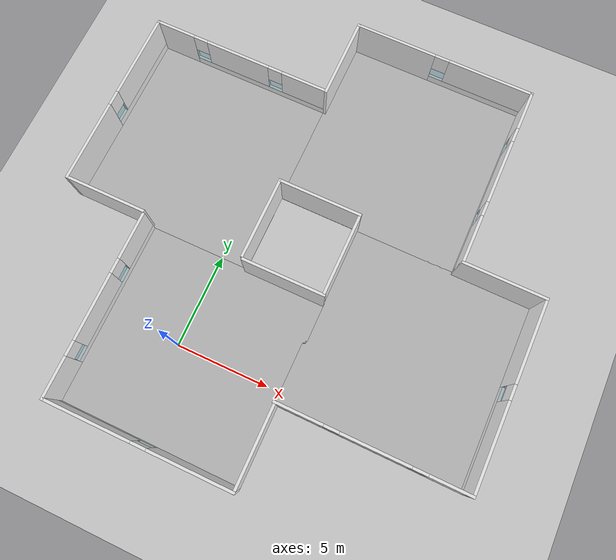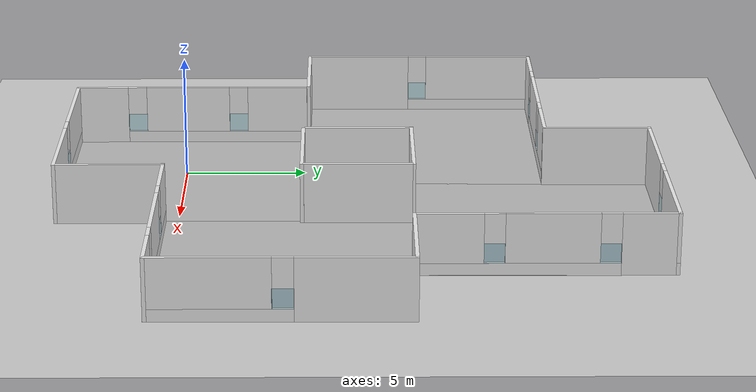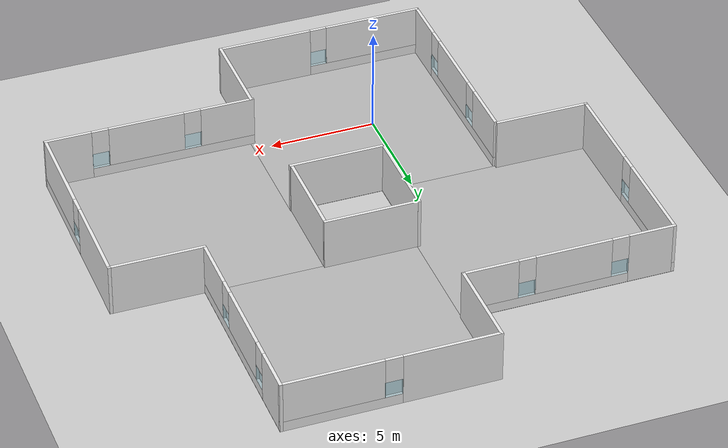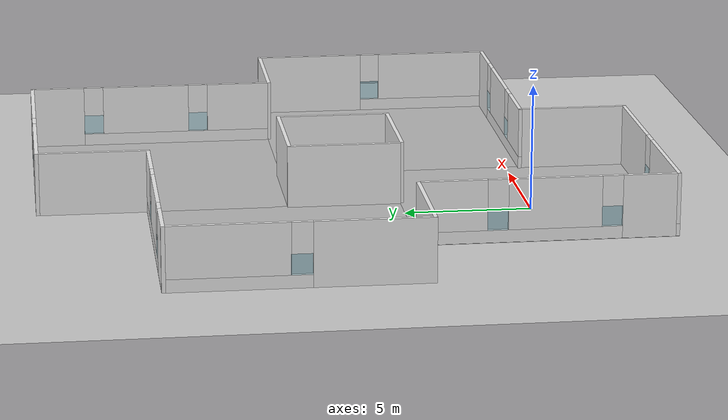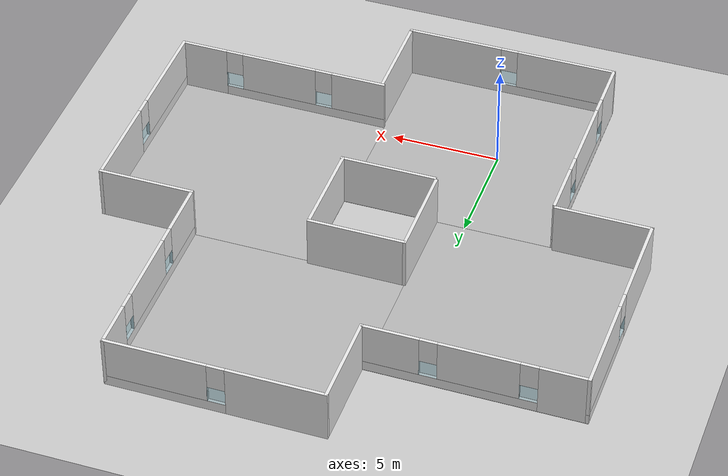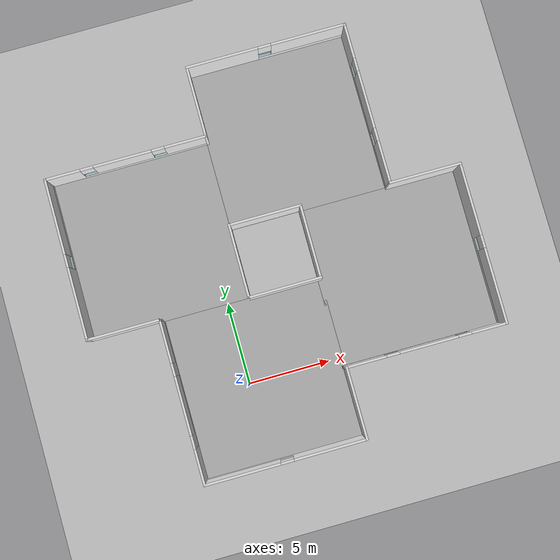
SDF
<sdf version="1.6">
 <world name="default">
  <model name="ground_plane">
   <static>1</static>
   <link name="link">
    <collision name="collision">
     <geometry><plane><normal>0 0 1</normal><size>100 100</size></plane></geometry>
     <surface>
      <contact><collide_bitmask>65535</collide_bitmask></contact>
      <friction><ode><mu>100</mu><mu2>50</mu2></ode></friction>
     </surface>
    </collision>
    <visual name="visual">
     <cast_shadows>0</cast_shadows>
     <geometry><plane><normal>0 0 1</normal><size>100 100</size></plane></geometry>
     <material>
      <script><uri>file://media/materials/scripts/gazebo.material</uri><name>Gazebo/Grey</name></script>
     </material>
    </visual>
   </link>
  </model>
  <light name="sun" type="directional">
   <cast_shadows>0</cast_shadows>
   <pose>0 0 70 0 -0 0</pose>
   <diffuse>0.1 0.2 0.3 1</diffuse>
   <specular>0.2 0.2 0.2 1</specular>
   <attenuation>
    <range>10</range>
    <constant>0.9</constant>
    <linear>0.01</linear>
    <quadratic>0.001</quadratic>
   </attenuation>
   <direction>-0.5 0.1 -0.9</direction>
  </light>
  <scene><ambient>0.75 0.75 0.75 0</ambient><shadows>1</shadows><background>0.7 0.7 0.7 1</background></scene>
  <gravity>0 0 -9.8</gravity>
  <magnetic_field>6e-06 2.3e-05 -4.2e-05</magnetic_field>
  <atmosphere type="adiabatic"/>
  <physics name="default_physics" default="0" type="ode">
   <max_step_size>0.001</max_step_size>
   <real_time_factor>1</real_time_factor>
   <real_time_update_rate>1000</real_time_update_rate>
  </physics>
  <audio><device>default</device></audio>
  <spherical_coordinates>
   <surface_model>EARTH_WGS84</surface_model>
   <latitude_deg>0</latitude_deg>
   <longitude_deg>0</longitude_deg>
   <elevation>0</elevation>
   <heading_deg>0</heading_deg>
  </spherical_coordinates>
  <model name="office_small">
   <model name="office_small">
    <pose>0.796663 0.043102 0 0 -0 0</pose>
    <link name="Wall_2">
     <pose>0 4.925 0 0 -0 0</pose>
     <visual name="Wall_2_Visual_1">
      <pose>2.75976 0 1.25 0 -0 0</pose>
      <geometry><box><size>4.48049 0.15 2.5</size></box></geometry>
      <material>
       <script>
        <uri>model://office_small/materials/scripts</uri>
        <uri>model://office_small/materials/textures</uri>
        <name>wall_white</name>
       </script>
      </material>
     </visual>
     <collision name="Wall_2_Collision_1">
      <geometry><box><size>4.48049 0.15 2.5</size></box></geometry>
      <pose>2.75976 0 1.25 0 -0 0</pose>
     </collision>
    </link>
    <link name="Wall_3">
     <pose>4.925 0 0 0 0 -1.5708</pose>
     <visual name="Wall_2_Visual_1">
      <pose>2.75976 0 1.25 0 -0 0</pose>
      <geometry><box><size>4.48049 0.15 2.5</size></box></geometry>
      <material>
       <script>
        <uri>model://office_small/materials/scripts</uri>
        <uri>model://office_small/materials/textures</uri>
        <name>wall_white</name>
       </script>
      </material>
     </visual>
     <collision name="Wall_2_Collision_1">
      <geometry><box><size>4.48049 0.15 2.5</size></box></geometry>
      <pose>2.75976 0 1.25 0 -0 0</pose>
     </collision>
    </link>
    <link name="Wall_4">
     <pose>0 -4.925 0 0 -0 3.14159</pose>
     <visual name="Wall_4_Visual_0">
      <pose>-2.74632 0 1.25 0 -0 0</pose>
      <geometry><box><size>4.50736 0.15 2.5</size></box></geometry>
      <material>
       <script>
        <uri>model://office_small/materials/scripts</uri>
        <uri>model://office_small/materials/textures</uri>
        <name>wall_white</name>
       </script>
      </material>
     </visual>
     <collision name="Wall_4_Collision_0">
      <geometry><box><size>4.50736 0.15 2.5</size></box></geometry>
      <pose>-2.74632 0 1.25 0 -0 0</pose>
     </collision>
     <visual name="Wall_4_Visual_1">
      <pose>2.25368 0 0.25 0 -0 0</pose>
      <geometry><box><size>5.49264 0.15 0.5</size></box></geometry>
      <material>
       <script>
        <uri>model://office_small/materials/scripts</uri>
        <uri>model://office_small/materials/textures</uri>
        <name>wall_white</name>
       </script>
      </material>
     </visual>
     <collision name="Wall_4_Collision_1">
      <geometry><box><size>5.49264 0.15 0.5</size></box></geometry>
      <pose>2.25368 0 0.25 0 -0 0</pose>
     </collision>
     <visual name="Wall_4_Visual_2">
      <pose>2.65368 0 1.5 0 -0 0</pose>
      <geometry><box><size>4.69264 0.15 2</size></box></geometry>
      <material>
       <script>
        <uri>model://office_small/materials/scripts</uri>
        <uri>model://office_small/materials/textures</uri>
        <name>wall_white</name>
       </script>
      </material>
     </visual>
     <collision name="Wall_4_Collision_2">
      <geometry><box><size>4.69264 0.15 2</size></box></geometry>
      <pose>2.65368 0 1.5 0 -0 0</pose>
     </collision>
     <visual name="Wall_4_Visual_3">
      <pose>-0.09264 0 1.9 0 -0 0</pose>
      <geometry><box><size>0.8 0.15 1.2</size></box></geometry>
      <material>
       <script>
        <uri>model://office_small/materials/scripts</uri>
        <uri>model://office_small/materials/textures</uri>
        <name>wall_white</name>
       </script>
      </material>
     </visual>
     <collision name="Wall_4_Collision_3">
      <geometry><box><size>0.8 0.15 1.2</size></box></geometry>
      <pose>-0.09264 0 1.9 0 -0 0</pose>
     </collision>
    </link>
    <link name="Wall_5">
     <pose>-4.925 0 0 0 -0 1.5708</pose>
     <visual name="Wall_5_Visual_0">
      <pose>-3.88364 0 1.25 0 -0 0</pose>
      <geometry><box><size>2.23271 0.15 2.5</size></box></geometry>
      <material>
       <script>
        <uri>model://office_small/materials/scripts</uri>
        <uri>model://office_small/materials/textures</uri>
        <name>wall_white</name>
       </script>
      </material>
     </visual>
     <collision name="Wall_5_Collision_0">
      <geometry><box><size>2.23271 0.15 2.5</size></box></geometry>
      <pose>-3.88364 0 1.25 0 -0 0</pose>
     </collision>
     <visual name="Wall_5_Visual_1">
      <pose>1.11636 0 0.25 0 -0 0</pose>
      <geometry><box><size>7.76729 0.15 0.5</size></box></geometry>
      <material>
       <script>
        <uri>model://office_small/materials/scripts</uri>
        <uri>model://office_small/materials/textures</uri>
        <name>wall_white</name>
       </script>
      </material>
     </visual>
     <collision name="Wall_5_Collision_1">
      <geometry><box><size>7.76729 0.15 0.5</size></box></geometry>
      <pose>1.11636 0 0.25 0 -0 0</pose>
     </collision>
     <visual name="Wall_5_Visual_2">
      <pose>-0.169878 0 1.5 0 -0 0</pose>
      <geometry><box><size>3.59482 0.15 2</size></box></geometry>
      <material>
       <script>
        <uri>model://office_small/materials/scripts</uri>
        <uri>model://office_small/materials/textures</uri>
        <name>wall_white</name>
       </script>
      </material>
     </visual>
     <collision name="Wall_5_Collision_2">
      <geometry><box><size>3.59482 0.15 2</size></box></geometry>
      <pose>-0.169878 0 1.5 0 -0 0</pose>
     </collision>
     <visual name="Wall_5_Visual_3">
      <pose>3.71376 0 1.5 0 -0 0</pose>
      <geometry><box><size>2.57247 0.15 2</size></box></geometry>
      <material>
       <script>
        <uri>model://office_small/materials/scripts</uri>
        <uri>model://office_small/materials/textures</uri>
        <name>wall_white</name>
       </script>
      </material>
     </visual>
     <collision name="Wall_5_Collision_3">
      <geometry><box><size>2.57247 0.15 2</size></box></geometry>
      <pose>3.71376 0 1.5 0 -0 0</pose>
     </collision>
     <visual name="Wall_5_Visual_4">
      <pose>-2.36729 0 1.9 0 -0 0</pose>
      <geometry><box><size>0.8 0.15 1.2</size></box></geometry>
      <material>
       <script>
        <uri>model://office_small/materials/scripts</uri>
        <uri>model://office_small/materials/textures</uri>
        <name>wall_white</name>
       </script>
      </material>
     </visual>
     <collision name="Wall_5_Collision_4">
      <geometry><box><size>0.8 0.15 1.2</size></box></geometry>
      <pose>-2.36729 0 1.9 0 -0 0</pose>
     </collision>
     <visual name="Wall_5_Visual_5">
      <pose>2.02753 0 1.9 0 -0 0</pose>
      <geometry><box><size>0.8 0.15 1.2</size></box></geometry>
      <material>
       <script>
        <uri>model://office_small/materials/scripts</uri>
        <uri>model://office_small/materials/textures</uri>
        <name>wall_white</name>
       </script>
      </material>
     </visual>
     <collision name="Wall_5_Collision_5">
      <geometry><box><size>0.8 0.15 1.2</size></box></geometry>
      <pose>2.02753 0 1.9 0 -0 0</pose>
     </collision>
    </link>
    <static>1</static>
   </model>
   <model name="window">
    <link name="link_2">
     <visual name="visual">
      <pose>0 0 0.9 0 -0 0</pose>
      <geometry><box><size>0.8 0.15 0.8</size></box></geometry>
      <material>
       <lighting>1</lighting>
       <ambient>0.1 0.5 0.6 1</ambient>
       <diffuse>0.1 0.5 0.6 1</diffuse>
       <specular>0.01 0.01 0.01 1</specular>
       <emissive>0 0 0 1</emissive>
      </material>
      <transparency>0.7</transparency>
     </visual>
     <collision name="collision">
      <pose>0 0 0.9 0 -0 0</pose>
      <geometry><box><size>0.8 0.15 0.8</size></box></geometry>
     </collision>
    </link>
    <static>1</static>
    <pose>-4.12651 2.07152 0 0 -0 1.5706</pose>
   </model>
   <model name="window_0">
    <link name="link_2">
     <visual name="visual">
      <pose>0 0 0.9 0 -0 0</pose>
      <geometry><box><size>0.8 0.15 0.8</size></box></geometry>
      <material>
       <lighting>1</lighting>
       <ambient>0.1 0.5 0.6 1</ambient>
       <diffuse>0.1 0.5 0.6 1</diffuse>
       <specular>0.01 0.01 0.01 1</specular>
       <emissive>0 0 0 1</emissive>
      </material>
      <transparency>0.7</transparency>
     </visual>
     <collision name="collision">
      <pose>0 0 0.9 0 -0 0</pose>
      <geometry><box><size>0.8 0.15 0.8</size></box></geometry>
     </collision>
    </link>
    <static>1</static>
    <pose>-4.12726 -2.32854 0 0 -0 1.57</pose>
   </model>
   <model name="window_1">
    <link name="link_2">
     <visual name="visual">
      <pose>0 0 0.9 0 -0 0</pose>
      <geometry><box><size>0.8 0.15 0.8</size></box></geometry>
      <material>
       <lighting>1</lighting>
       <ambient>0.1 0.5 0.6 1</ambient>
       <diffuse>0.1 0.5 0.6 1</diffuse>
       <specular>0.01 0.01 0.01 1</specular>
       <emissive>0 0 0 1</emissive>
      </material>
      <transparency>0.7</transparency>
     </visual>
     <collision name="collision">
      <pose>0 0 0.9 0 -0 0</pose>
      <geometry><box><size>0.8 0.15 0.8</size></box></geometry>
     </collision>
    </link>
    <static>1</static>
    <pose>0.875059 -4.88342 0 0 -0 0</pose>
   </model>
   <model name="Floor">
    <link name="main">
     <pose>0.795 0.05 0.01 0 -0 0</pose>
     <collision name="main_Collision"><geometry><box><size>10 10 0.01</size></box></geometry></collision>
     <visual name="main_Visual">
      <geometry><box><size>10 10 0.01</size></box></geometry>
      <material>
       <script>
        <uri>model://office_small/materials/scripts</uri>
        <uri>model://office_small/materials/textures</uri>
        <name>floor</name>
       </script>
      </material>
     </visual>
    </link>
    <static>1</static>
   </model>
   <static>0</static>
   <pose>0.065724 -0.026802 0 0 -0 0</pose>
  </model>
  <model name="office_small_0">
   <model name="office_small">
    <pose>0.796663 0.043102 0 0 -0 0</pose>
    <link name="Wall_2">
     <pose>0 4.925 0 0 -0 0</pose>
     <visual name="Wall_2_Visual_1">
      <pose>2.75976 0 1.25 0 -0 0</pose>
      <geometry><box><size>4.48049 0.15 2.5</size></box></geometry>
      <material>
       <script>
        <uri>model://office_small/materials/scripts</uri>
        <uri>model://office_small/materials/textures</uri>
        <name>wall_white</name>
       </script>
      </material>
     </visual>
     <collision name="Wall_2_Collision_1">
      <geometry><box><size>4.48049 0.15 2.5</size></box></geometry>
      <pose>2.75976 0 1.25 0 -0 0</pose>
     </collision>
    </link>
    <link name="Wall_3">
     <pose>4.925 0 0 0 0 -1.5708</pose>
     <visual name="Wall_2_Visual_1">
      <pose>2.75976 0 1.25 0 -0 0</pose>
      <geometry><box><size>4.48049 0.15 2.5</size></box></geometry>
      <material>
       <script>
        <uri>model://office_small/materials/scripts</uri>
        <uri>model://office_small/materials/textures</uri>
        <name>wall_white</name>
       </script>
      </material>
     </visual>
     <collision name="Wall_2_Collision_1">
      <geometry><box><size>4.48049 0.15 2.5</size></box></geometry>
      <pose>2.75976 0 1.25 0 -0 0</pose>
     </collision>
    </link>
    <link name="Wall_4">
     <pose>0 -4.925 0 0 -0 3.14159</pose>
     <visual name="Wall_4_Visual_0">
      <pose>-2.74632 0 1.25 0 -0 0</pose>
      <geometry><box><size>4.50736 0.15 2.5</size></box></geometry>
      <material>
       <script>
        <uri>model://office_small/materials/scripts</uri>
        <uri>model://office_small/materials/textures</uri>
        <name>wall_white</name>
       </script>
      </material>
     </visual>
     <collision name="Wall_4_Collision_0">
      <geometry><box><size>4.50736 0.15 2.5</size></box></geometry>
      <pose>-2.74632 0 1.25 0 -0 0</pose>
     </collision>
     <visual name="Wall_4_Visual_1">
      <pose>2.25368 0 0.25 0 -0 0</pose>
      <geometry><box><size>5.49264 0.15 0.5</size></box></geometry>
      <material>
       <script>
        <uri>model://office_small/materials/scripts</uri>
        <uri>model://office_small/materials/textures</uri>
        <name>wall_white</name>
       </script>
      </material>
     </visual>
     <collision name="Wall_4_Collision_1">
      <geometry><box><size>5.49264 0.15 0.5</size></box></geometry>
      <pose>2.25368 0 0.25 0 -0 0</pose>
     </collision>
     <visual name="Wall_4_Visual_2">
      <pose>2.65368 0 1.5 0 -0 0</pose>
      <geometry><box><size>4.69264 0.15 2</size></box></geometry>
      <material>
       <script>
        <uri>model://office_small/materials/scripts</uri>
        <uri>model://office_small/materials/textures</uri>
        <name>wall_white</name>
       </script>
      </material>
     </visual>
     <collision name="Wall_4_Collision_2">
      <geometry><box><size>4.69264 0.15 2</size></box></geometry>
      <pose>2.65368 0 1.5 0 -0 0</pose>
     </collision>
     <visual name="Wall_4_Visual_3">
      <pose>-0.09264 0 1.9 0 -0 0</pose>
      <geometry><box><size>0.8 0.15 1.2</size></box></geometry>
      <material>
       <script>
        <uri>model://office_small/materials/scripts</uri>
        <uri>model://office_small/materials/textures</uri>
        <name>wall_white</name>
       </script>
      </material>
     </visual>
     <collision name="Wall_4_Collision_3">
      <geometry><box><size>0.8 0.15 1.2</size></box></geometry>
      <pose>-0.09264 0 1.9 0 -0 0</pose>
     </collision>
    </link>
    <link name="Wall_5">
     <pose>-4.925 0 0 0 -0 1.5708</pose>
     <visual name="Wall_5_Visual_0">
      <pose>-3.88364 0 1.25 0 -0 0</pose>
      <geometry><box><size>2.23271 0.15 2.5</size></box></geometry>
      <material>
       <script>
        <uri>model://office_small/materials/scripts</uri>
        <uri>model://office_small/materials/textures</uri>
        <name>wall_white</name>
       </script>
      </material>
     </visual>
     <collision name="Wall_5_Collision_0">
      <geometry><box><size>2.23271 0.15 2.5</size></box></geometry>
      <pose>-3.88364 0 1.25 0 -0 0</pose>
     </collision>
     <visual name="Wall_5_Visual_1">
      <pose>1.11636 0 0.25 0 -0 0</pose>
      <geometry><box><size>7.76729 0.15 0.5</size></box></geometry>
      <material>
       <script>
        <uri>model://office_small/materials/scripts</uri>
        <uri>model://office_small/materials/textures</uri>
        <name>wall_white</name>
       </script>
      </material>
     </visual>
     <collision name="Wall_5_Collision_1">
      <geometry><box><size>7.76729 0.15 0.5</size></box></geometry>
      <pose>1.11636 0 0.25 0 -0 0</pose>
     </collision>
     <visual name="Wall_5_Visual_2">
      <pose>-0.169878 0 1.5 0 -0 0</pose>
      <geometry><box><size>3.59482 0.15 2</size></box></geometry>
      <material>
       <script>
        <uri>model://office_small/materials/scripts</uri>
        <uri>model://office_small/materials/textures</uri>
        <name>wall_white</name>
       </script>
      </material>
     </visual>
     <collision name="Wall_5_Collision_2">
      <geometry><box><size>3.59482 0.15 2</size></box></geometry>
      <pose>-0.169878 0 1.5 0 -0 0</pose>
     </collision>
     <visual name="Wall_5_Visual_3">
      <pose>3.71376 0 1.5 0 -0 0</pose>
      <geometry><box><size>2.57247 0.15 2</size></box></geometry>
      <material>
       <script>
        <uri>model://office_small/materials/scripts</uri>
        <uri>model://office_small/materials/textures</uri>
        <name>wall_white</name>
       </script>
      </material>
     </visual>
     <collision name="Wall_5_Collision_3">
      <geometry><box><size>2.57247 0.15 2</size></box></geometry>
      <pose>3.71376 0 1.5 0 -0 0</pose>
     </collision>
     <visual name="Wall_5_Visual_4">
      <pose>-2.36729 0 1.9 0 -0 0</pose>
      <geometry><box><size>0.8 0.15 1.2</size></box></geometry>
      <material>
       <script>
        <uri>model://office_small/materials/scripts</uri>
        <uri>model://office_small/materials/textures</uri>
        <name>wall_white</name>
       </script>
      </material>
     </visual>
     <collision name="Wall_5_Collision_4">
      <geometry><box><size>0.8 0.15 1.2</size></box></geometry>
      <pose>-2.36729 0 1.9 0 -0 0</pose>
     </collision>
     <visual name="Wall_5_Visual_5">
      <pose>2.02753 0 1.9 0 -0 0</pose>
      <geometry><box><size>0.8 0.15 1.2</size></box></geometry>
      <material>
       <script>
        <uri>model://office_small/materials/scripts</uri>
        <uri>model://office_small/materials/textures</uri>
        <name>wall_white</name>
       </script>
      </material>
     </visual>
     <collision name="Wall_5_Collision_5">
      <geometry><box><size>0.8 0.15 1.2</size></box></geometry>
      <pose>2.02753 0 1.9 0 -0 0</pose>
     </collision>
    </link>
    <static>1</static>
   </model>
   <model name="window">
    <link name="link_2">
     <visual name="visual">
      <pose>0 0 0.9 0 -0 0</pose>
      <geometry><box><size>0.8 0.15 0.8</size></box></geometry>
      <material>
       <lighting>1</lighting>
       <ambient>0.1 0.5 0.6 1</ambient>
       <diffuse>0.1 0.5 0.6 1</diffuse>
       <specular>0.01 0.01 0.01 1</specular>
       <emissive>0 0 0 1</emissive>
      </material>
      <transparency>0.7</transparency>
     </visual>
     <collision name="collision">
      <pose>0 0 0.9 0 -0 0</pose>
      <geometry><box><size>0.8 0.15 0.8</size></box></geometry>
     </collision>
    </link>
    <static>1</static>
    <pose>-4.12651 2.07152 0 0 -0 1.5706</pose>
   </model>
   <model name="window_0">
    <link name="link_2">
     <visual name="visual">
      <pose>0 0 0.9 0 -0 0</pose>
      <geometry><box><size>0.8 0.15 0.8</size></box></geometry>
      <material>
       <lighting>1</lighting>
       <ambient>0.1 0.5 0.6 1</ambient>
       <diffuse>0.1 0.5 0.6 1</diffuse>
       <specular>0.01 0.01 0.01 1</specular>
       <emissive>0 0 0 1</emissive>
      </material>
      <transparency>0.7</transparency>
     </visual>
     <collision name="collision">
      <pose>0 0 0.9 0 -0 0</pose>
      <geometry><box><size>0.8 0.15 0.8</size></box></geometry>
     </collision>
    </link>
    <static>1</static>
    <pose>-4.12726 -2.32854 0 0 -0 1.57</pose>
   </model>
   <model name="window_1">
    <link name="link_2">
     <visual name="visual">
      <pose>0 0 0.9 0 -0 0</pose>
      <geometry><box><size>0.8 0.15 0.8</size></box></geometry>
      <material>
       <lighting>1</lighting>
       <ambient>0.1 0.5 0.6 1</ambient>
       <diffuse>0.1 0.5 0.6 1</diffuse>
       <specular>0.01 0.01 0.01 1</specular>
       <emissive>0 0 0 1</emissive>
      </material>
      <transparency>0.7</transparency>
     </visual>
     <collision name="collision">
      <pose>0 0 0.9 0 -0 0</pose>
      <geometry><box><size>0.8 0.15 0.8</size></box></geometry>
     </collision>
    </link>
    <static>1</static>
    <pose>0.875059 -4.88342 0 0 -0 0</pose>
   </model>
   <model name="Floor">
    <link name="main">
     <pose>0.795 0.05 0.01 0 -0 0</pose>
     <collision name="main_Collision"><geometry><box><size>10 10 0.01</size></box></geometry></collision>
     <visual name="main_Visual">
      <geometry><box><size>10 10 0.01</size></box></geometry>
      <material>
       <script>
        <uri>model://office_small/materials/scripts</uri>
        <uri>model://office_small/materials/textures</uri>
        <name>floor</name>
       </script>
      </material>
     </visual>
    </link>
    <static>1</static>
   </model>
   <static>0</static>
   <pose>10.7222 3.5342 0 0 -0 1.56617</pose>
  </model>
  <model name="office_small_1">
   <model name="office_small">
    <pose>0.796663 0.043102 0 0 -0 0</pose>
    <link name="Wall_2">
     <pose>0 4.925 0 0 -0 0</pose>
     <visual name="Wall_2_Visual_1">
      <pose>2.75976 0 1.25 0 -0 0</pose>
      <geometry><box><size>4.48049 0.15 2.5</size></box></geometry>
      <material>
       <script>
        <uri>model://office_small/materials/scripts</uri>
        <uri>model://office_small/materials/textures</uri>
        <name>wall_white</name>
       </script>
      </material>
     </visual>
     <collision name="Wall_2_Collision_1">
      <geometry><box><size>4.48049 0.15 2.5</size></box></geometry>
      <pose>2.75976 0 1.25 0 -0 0</pose>
     </collision>
    </link>
    <link name="Wall_3">
     <pose>4.925 0 0 0 0 -1.5708</pose>
     <visual name="Wall_2_Visual_1">
      <pose>2.75976 0 1.25 0 -0 0</pose>
      <geometry><box><size>4.48049 0.15 2.5</size></box></geometry>
      <material>
       <script>
        <uri>model://office_small/materials/scripts</uri>
        <uri>model://office_small/materials/textures</uri>
        <name>wall_white</name>
       </script>
      </material>
     </visual>
     <collision name="Wall_2_Collision_1">
      <geometry><box><size>4.48049 0.15 2.5</size></box></geometry>
      <pose>2.75976 0 1.25 0 -0 0</pose>
     </collision>
    </link>
    <link name="Wall_4">
     <pose>0 -4.925 0 0 -0 3.14159</pose>
     <visual name="Wall_4_Visual_0">
      <pose>-2.74632 0 1.25 0 -0 0</pose>
      <geometry><box><size>4.50736 0.15 2.5</size></box></geometry>
      <material>
       <script>
        <uri>model://office_small/materials/scripts</uri>
        <uri>model://office_small/materials/textures</uri>
        <name>wall_white</name>
       </script>
      </material>
     </visual>
     <collision name="Wall_4_Collision_0">
      <geometry><box><size>4.50736 0.15 2.5</size></box></geometry>
      <pose>-2.74632 0 1.25 0 -0 0</pose>
     </collision>
     <visual name="Wall_4_Visual_1">
      <pose>2.25368 0 0.25 0 -0 0</pose>
      <geometry><box><size>5.49264 0.15 0.5</size></box></geometry>
      <material>
       <script>
        <uri>model://office_small/materials/scripts</uri>
        <uri>model://office_small/materials/textures</uri>
        <name>wall_white</name>
       </script>
      </material>
     </visual>
     <collision name="Wall_4_Collision_1">
      <geometry><box><size>5.49264 0.15 0.5</size></box></geometry>
      <pose>2.25368 0 0.25 0 -0 0</pose>
     </collision>
     <visual name="Wall_4_Visual_2">
      <pose>2.65368 0 1.5 0 -0 0</pose>
      <geometry><box><size>4.69264 0.15 2</size></box></geometry>
      <material>
       <script>
        <uri>model://office_small/materials/scripts</uri>
        <uri>model://office_small/materials/textures</uri>
        <name>wall_white</name>
       </script>
      </material>
     </visual>
     <collision name="Wall_4_Collision_2">
      <geometry><box><size>4.69264 0.15 2</size></box></geometry>
      <pose>2.65368 0 1.5 0 -0 0</pose>
     </collision>
     <visual name="Wall_4_Visual_3">
      <pose>-0.09264 0 1.9 0 -0 0</pose>
      <geometry><box><size>0.8 0.15 1.2</size></box></geometry>
      <material>
       <script>
        <uri>model://office_small/materials/scripts</uri>
        <uri>model://office_small/materials/textures</uri>
        <name>wall_white</name>
       </script>
      </material>
     </visual>
     <collision name="Wall_4_Collision_3">
      <geometry><box><size>0.8 0.15 1.2</size></box></geometry>
      <pose>-0.09264 0 1.9 0 -0 0</pose>
     </collision>
    </link>
    <link name="Wall_5">
     <pose>-4.925 0 0 0 -0 1.5708</pose>
     <visual name="Wall_5_Visual_0">
      <pose>-3.88364 0 1.25 0 -0 0</pose>
      <geometry><box><size>2.23271 0.15 2.5</size></box></geometry>
      <material>
       <script>
        <uri>model://office_small/materials/scripts</uri>
        <uri>model://office_small/materials/textures</uri>
        <name>wall_white</name>
       </script>
      </material>
     </visual>
     <collision name="Wall_5_Collision_0">
      <geometry><box><size>2.23271 0.15 2.5</size></box></geometry>
      <pose>-3.88364 0 1.25 0 -0 0</pose>
     </collision>
     <visual name="Wall_5_Visual_1">
      <pose>1.11636 0 0.25 0 -0 0</pose>
      <geometry><box><size>7.76729 0.15 0.5</size></box></geometry>
      <material>
       <script>
        <uri>model://office_small/materials/scripts</uri>
        <uri>model://office_small/materials/textures</uri>
        <name>wall_white</name>
       </script>
      </material>
     </visual>
     <collision name="Wall_5_Collision_1">
      <geometry><box><size>7.76729 0.15 0.5</size></box></geometry>
      <pose>1.11636 0 0.25 0 -0 0</pose>
     </collision>
     <visual name="Wall_5_Visual_2">
      <pose>-0.169878 0 1.5 0 -0 0</pose>
      <geometry><box><size>3.59482 0.15 2</size></box></geometry>
      <material>
       <script>
        <uri>model://office_small/materials/scripts</uri>
        <uri>model://office_small/materials/textures</uri>
        <name>wall_white</name>
       </script>
      </material>
     </visual>
     <collision name="Wall_5_Collision_2">
      <geometry><box><size>3.59482 0.15 2</size></box></geometry>
      <pose>-0.169878 0 1.5 0 -0 0</pose>
     </collision>
     <visual name="Wall_5_Visual_3">
      <pose>3.71376 0 1.5 0 -0 0</pose>
      <geometry><box><size>2.57247 0.15 2</size></box></geometry>
      <material>
       <script>
        <uri>model://office_small/materials/scripts</uri>
        <uri>model://office_small/materials/textures</uri>
        <name>wall_white</name>
       </script>
      </material>
     </visual>
     <collision name="Wall_5_Collision_3">
      <geometry><box><size>2.57247 0.15 2</size></box></geometry>
      <pose>3.71376 0 1.5 0 -0 0</pose>
     </collision>
     <visual name="Wall_5_Visual_4">
      <pose>-2.36729 0 1.9 0 -0 0</pose>
      <geometry><box><size>0.8 0.15 1.2</size></box></geometry>
      <material>
       <script>
        <uri>model://office_small/materials/scripts</uri>
        <uri>model://office_small/materials/textures</uri>
        <name>wall_white</name>
       </script>
      </material>
     </visual>
     <collision name="Wall_5_Collision_4">
      <geometry><box><size>0.8 0.15 1.2</size></box></geometry>
      <pose>-2.36729 0 1.9 0 -0 0</pose>
     </collision>
     <visual name="Wall_5_Visual_5">
      <pose>2.02753 0 1.9 0 -0 0</pose>
      <geometry><box><size>0.8 0.15 1.2</size></box></geometry>
      <material>
       <script>
        <uri>model://office_small/materials/scripts</uri>
        <uri>model://office_small/materials/textures</uri>
        <name>wall_white</name>
       </script>
      </material>
     </visual>
     <collision name="Wall_5_Collision_5">
      <geometry><box><size>0.8 0.15 1.2</size></box></geometry>
      <pose>2.02753 0 1.9 0 -0 0</pose>
     </collision>
    </link>
    <static>1</static>
   </model>
   <model name="window">
    <link name="link_2">
     <visual name="visual">
      <pose>0 0 0.9 0 -0 0</pose>
      <geometry><box><size>0.8 0.15 0.8</size></box></geometry>
      <material>
       <lighting>1</lighting>
       <ambient>0.1 0.5 0.6 1</ambient>
       <diffuse>0.1 0.5 0.6 1</diffuse>
       <specular>0.01 0.01 0.01 1</specular>
       <emissive>0 0 0 1</emissive>
      </material>
      <transparency>0.7</transparency>
     </visual>
     <collision name="collision">
      <pose>0 0 0.9 0 -0 0</pose>
      <geometry><box><size>0.8 0.15 0.8</size></box></geometry>
     </collision>
    </link>
    <static>1</static>
    <pose>-4.12651 2.07152 0 0 -0 1.5706</pose>
   </model>
   <model name="window_0">
    <link name="link_2">
     <visual name="visual">
      <pose>0 0 0.9 0 -0 0</pose>
      <geometry><box><size>0.8 0.15 0.8</size></box></geometry>
      <material>
       <lighting>1</lighting>
       <ambient>0.1 0.5 0.6 1</ambient>
       <diffuse>0.1 0.5 0.6 1</diffuse>
       <specular>0.01 0.01 0.01 1</specular>
       <emissive>0 0 0 1</emissive>
      </material>
      <transparency>0.7</transparency>
     </visual>
     <collision name="collision">
      <pose>0 0 0.9 0 -0 0</pose>
      <geometry><box><size>0.8 0.15 0.8</size></box></geometry>
     </collision>
    </link>
    <static>1</static>
    <pose>-4.12726 -2.32854 0 0 -0 1.57</pose>
   </model>
   <model name="window_1">
    <link name="link_2">
     <visual name="visual">
      <pose>0 0 0.9 0 -0 0</pose>
      <geometry><box><size>0.8 0.15 0.8</size></box></geometry>
      <material>
       <lighting>1</lighting>
       <ambient>0.1 0.5 0.6 1</ambient>
       <diffuse>0.1 0.5 0.6 1</diffuse>
       <specular>0.01 0.01 0.01 1</specular>
       <emissive>0 0 0 1</emissive>
      </material>
      <transparency>0.7</transparency>
     </visual>
     <collision name="collision">
      <pose>0 0 0.9 0 -0 0</pose>
      <geometry><box><size>0.8 0.15 0.8</size></box></geometry>
     </collision>
    </link>
    <static>1</static>
    <pose>0.875059 -4.88342 0 0 -0 0</pose>
   </model>
   <model name="Floor">
    <link name="main">
     <pose>0.795 0.05 0.01 0 -0 0</pose>
     <collision name="main_Collision"><geometry><box><size>10 10 0.01</size></box></geometry></collision>
     <visual name="main_Visual">
      <geometry><box><size>10 10 0.01</size></box></geometry>
      <material>
       <script>
        <uri>model://office_small/materials/scripts</uri>
        <uri>model://office_small/materials/textures</uri>
        <name>floor</name>
       </script>
      </material>
     </visual>
    </link>
    <static>1</static>
   </model>
   <static>0</static>
   <pose>7.17739 14.3591 0 0 -0 3.13941</pose>
  </model>
  <model name="office_small_2">
   <model name="office_small">
    <pose>0.796663 0.043102 0 0 -0 0</pose>
    <link name="Wall_2">
     <pose>0 4.925 0 0 -0 0</pose>
     <visual name="Wall_2_Visual_1">
      <pose>2.75976 0 1.25 0 -0 0</pose>
      <geometry><box><size>4.48049 0.15 2.5</size></box></geometry>
      <material>
       <script>
        <uri>model://office_small/materials/scripts</uri>
        <uri>model://office_small/materials/textures</uri>
        <name>wall_white</name>
       </script>
      </material>
     </visual>
     <collision name="Wall_2_Collision_1">
      <geometry><box><size>4.48049 0.15 2.5</size></box></geometry>
      <pose>2.75976 0 1.25 0 -0 0</pose>
     </collision>
    </link>
    <link name="Wall_3">
     <pose>4.925 0 0 0 0 -1.5708</pose>
     <visual name="Wall_2_Visual_1">
      <pose>2.75976 0 1.25 0 -0 0</pose>
      <geometry><box><size>4.48049 0.15 2.5</size></box></geometry>
      <material>
       <script>
        <uri>model://office_small/materials/scripts</uri>
        <uri>model://office_small/materials/textures</uri>
        <name>wall_white</name>
       </script>
      </material>
     </visual>
     <collision name="Wall_2_Collision_1">
      <geometry><box><size>4.48049 0.15 2.5</size></box></geometry>
      <pose>2.75976 0 1.25 0 -0 0</pose>
     </collision>
    </link>
    <link name="Wall_4">
     <pose>0 -4.925 0 0 -0 3.14159</pose>
     <visual name="Wall_4_Visual_0">
      <pose>-2.74632 0 1.25 0 -0 0</pose>
      <geometry><box><size>4.50736 0.15 2.5</size></box></geometry>
      <material>
       <script>
        <uri>model://office_small/materials/scripts</uri>
        <uri>model://office_small/materials/textures</uri>
        <name>wall_white</name>
       </script>
      </material>
     </visual>
     <collision name="Wall_4_Collision_0">
      <geometry><box><size>4.50736 0.15 2.5</size></box></geometry>
      <pose>-2.74632 0 1.25 0 -0 0</pose>
     </collision>
     <visual name="Wall_4_Visual_1">
      <pose>2.25368 0 0.25 0 -0 0</pose>
      <geometry><box><size>5.49264 0.15 0.5</size></box></geometry>
      <material>
       <script>
        <uri>model://office_small/materials/scripts</uri>
        <uri>model://office_small/materials/textures</uri>
        <name>wall_white</name>
       </script>
      </material>
     </visual>
     <collision name="Wall_4_Collision_1">
      <geometry><box><size>5.49264 0.15 0.5</size></box></geometry>
      <pose>2.25368 0 0.25 0 -0 0</pose>
     </collision>
     <visual name="Wall_4_Visual_2">
      <pose>2.65368 0 1.5 0 -0 0</pose>
      <geometry><box><size>4.69264 0.15 2</size></box></geometry>
      <material>
       <script>
        <uri>model://office_small/materials/scripts</uri>
        <uri>model://office_small/materials/textures</uri>
        <name>wall_white</name>
       </script>
      </material>
     </visual>
     <collision name="Wall_4_Collision_2">
      <geometry><box><size>4.69264 0.15 2</size></box></geometry>
      <pose>2.65368 0 1.5 0 -0 0</pose>
     </collision>
     <visual name="Wall_4_Visual_3">
      <pose>-0.09264 0 1.9 0 -0 0</pose>
      <geometry><box><size>0.8 0.15 1.2</size></box></geometry>
      <material>
       <script>
        <uri>model://office_small/materials/scripts</uri>
        <uri>model://office_small/materials/textures</uri>
        <name>wall_white</name>
       </script>
      </material>
     </visual>
     <collision name="Wall_4_Collision_3">
      <geometry><box><size>0.8 0.15 1.2</size></box></geometry>
      <pose>-0.09264 0 1.9 0 -0 0</pose>
     </collision>
    </link>
    <link name="Wall_5">
     <pose>-4.925 0 0 0 -0 1.5708</pose>
     <visual name="Wall_5_Visual_0">
      <pose>-3.88364 0 1.25 0 -0 0</pose>
      <geometry><box><size>2.23271 0.15 2.5</size></box></geometry>
      <material>
       <script>
        <uri>model://office_small/materials/scripts</uri>
        <uri>model://office_small/materials/textures</uri>
        <name>wall_white</name>
       </script>
      </material>
     </visual>
     <collision name="Wall_5_Collision_0">
      <geometry><box><size>2.23271 0.15 2.5</size></box></geometry>
      <pose>-3.88364 0 1.25 0 -0 0</pose>
     </collision>
     <visual name="Wall_5_Visual_1">
      <pose>1.11636 0 0.25 0 -0 0</pose>
      <geometry><box><size>7.76729 0.15 0.5</size></box></geometry>
      <material>
       <script>
        <uri>model://office_small/materials/scripts</uri>
        <uri>model://office_small/materials/textures</uri>
        <name>wall_white</name>
       </script>
      </material>
     </visual>
     <collision name="Wall_5_Collision_1">
      <geometry><box><size>7.76729 0.15 0.5</size></box></geometry>
      <pose>1.11636 0 0.25 0 -0 0</pose>
     </collision>
     <visual name="Wall_5_Visual_2">
      <pose>-0.169878 0 1.5 0 -0 0</pose>
      <geometry><box><size>3.59482 0.15 2</size></box></geometry>
      <material>
       <script>
        <uri>model://office_small/materials/scripts</uri>
        <uri>model://office_small/materials/textures</uri>
        <name>wall_white</name>
       </script>
      </material>
     </visual>
     <collision name="Wall_5_Collision_2">
      <geometry><box><size>3.59482 0.15 2</size></box></geometry>
      <pose>-0.169878 0 1.5 0 -0 0</pose>
     </collision>
     <visual name="Wall_5_Visual_3">
      <pose>3.71376 0 1.5 0 -0 0</pose>
      <geometry><box><size>2.57247 0.15 2</size></box></geometry>
      <material>
       <script>
        <uri>model://office_small/materials/scripts</uri>
        <uri>model://office_small/materials/textures</uri>
        <name>wall_white</name>
       </script>
      </material>
     </visual>
     <collision name="Wall_5_Collision_3">
      <geometry><box><size>2.57247 0.15 2</size></box></geometry>
      <pose>3.71376 0 1.5 0 -0 0</pose>
     </collision>
     <visual name="Wall_5_Visual_4">
      <pose>-2.36729 0 1.9 0 -0 0</pose>
      <geometry><box><size>0.8 0.15 1.2</size></box></geometry>
      <material>
       <script>
        <uri>model://office_small/materials/scripts</uri>
        <uri>model://office_small/materials/textures</uri>
        <name>wall_white</name>
       </script>
      </material>
     </visual>
     <collision name="Wall_5_Collision_4">
      <geometry><box><size>0.8 0.15 1.2</size></box></geometry>
      <pose>-2.36729 0 1.9 0 -0 0</pose>
     </collision>
     <visual name="Wall_5_Visual_5">
      <pose>2.02753 0 1.9 0 -0 0</pose>
      <geometry><box><size>0.8 0.15 1.2</size></box></geometry>
      <material>
       <script>
        <uri>model://office_small/materials/scripts</uri>
        <uri>model://office_small/materials/textures</uri>
        <name>wall_white</name>
       </script>
      </material>
     </visual>
     <collision name="Wall_5_Collision_5">
      <geometry><box><size>0.8 0.15 1.2</size></box></geometry>
      <pose>2.02753 0 1.9 0 -0 0</pose>
     </collision>
    </link>
    <static>1</static>
   </model>
   <model name="window">
    <link name="link_2">
     <visual name="visual">
      <pose>0 0 0.9 0 -0 0</pose>
      <geometry><box><size>0.8 0.15 0.8</size></box></geometry>
      <material>
       <lighting>1</lighting>
       <ambient>0.1 0.5 0.6 1</ambient>
       <diffuse>0.1 0.5 0.6 1</diffuse>
       <specular>0.01 0.01 0.01 1</specular>
       <emissive>0 0 0 1</emissive>
      </material>
      <transparency>0.7</transparency>
     </visual>
     <collision name="collision">
      <pose>0 0 0.9 0 -0 0</pose>
      <geometry><box><size>0.8 0.15 0.8</size></box></geometry>
     </collision>
    </link>
    <static>1</static>
    <pose>-4.12651 2.07152 0 0 -0 1.5706</pose>
   </model>
   <model name="window_0">
    <link name="link_2">
     <visual name="visual">
      <pose>0 0 0.9 0 -0 0</pose>
      <geometry><box><size>0.8 0.15 0.8</size></box></geometry>
      <material>
       <lighting>1</lighting>
       <ambient>0.1 0.5 0.6 1</ambient>
       <diffuse>0.1 0.5 0.6 1</diffuse>
       <specular>0.01 0.01 0.01 1</specular>
       <emissive>0 0 0 1</emissive>
      </material>
      <transparency>0.7</transparency>
     </visual>
     <collision name="collision">
      <pose>0 0 0.9 0 -0 0</pose>
      <geometry><box><size>0.8 0.15 0.8</size></box></geometry>
     </collision>
    </link>
    <static>1</static>
    <pose>-4.12726 -2.32854 0 0 -0 1.57</pose>
   </model>
   <model name="window_1">
    <link name="link_2">
     <visual name="visual">
      <pose>0 0 0.9 0 -0 0</pose>
      <geometry><box><size>0.8 0.15 0.8</size></box></geometry>
      <material>
       <lighting>1</lighting>
       <ambient>0.1 0.5 0.6 1</ambient>
       <diffuse>0.1 0.5 0.6 1</diffuse>
       <specular>0.01 0.01 0.01 1</specular>
       <emissive>0 0 0 1</emissive>
      </material>
      <transparency>0.7</transparency>
     </visual>
     <collision name="collision">
      <pose>0 0 0.9 0 -0 0</pose>
      <geometry><box><size>0.8 0.15 0.8</size></box></geometry>
     </collision>
    </link>
    <static>1</static>
    <pose>0.875059 -4.88342 0 0 -0 0</pose>
   </model>
   <model name="Floor">
    <link name="main">
     <pose>0.795 0.05 0.01 0 -0 0</pose>
     <collision name="main_Collision"><geometry><box><size>10 10 0.01</size></box></geometry></collision>
     <visual name="main_Visual">
      <geometry><box><size>10 10 0.01</size></box></geometry>
      <material>
       <script>
        <uri>model://office_small/materials/scripts</uri>
        <uri>model://office_small/materials/textures</uri>
        <name>floor</name>
       </script>
      </material>
     </visual>
    </link>
    <static>1</static>
   </model>
   <static>0</static>
   <pose>-3.5904 10.8143 0 0 0 -1.5743</pose>
  </model>
 </world>
</sdf>
